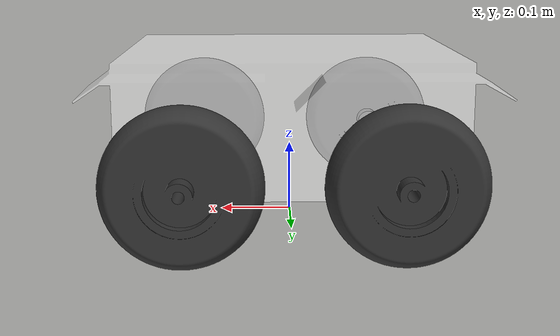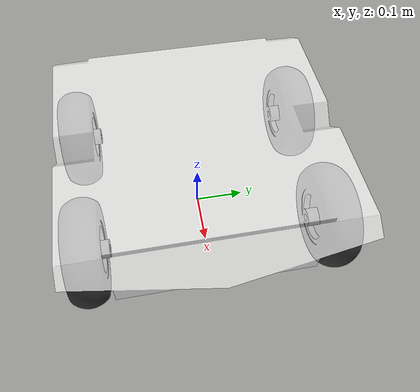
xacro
<?xml version="1.0"?>
<robot name="survo" xmlns:xacro="http://www.ros.org/wiki/xacro">
   <property name="M_PI" value="3.1415926535897931" />
  <property name="ground_clearance" value="0.0762" />

  <xacro:include filename="$(find survo_description)/urdf/materials.urdf.xacro" />

  <property name="chassis_length" value="0.4572" />
  <property name="chassis_width" value="0.381" />
  <property name="chassis_height" value="0.1778" />
  <property name="chassis_mass" value="6" />
  <property name="wheel_mass" value="1.5" />
  <property name="wheel_radius" value="0.2032" />
  <property name="wheel_width" value="0.0635" />

  <gazebo>
    <plugin name="grizzly_diff_controller"
            filename="libgrizzly_gazebo_plugins.so">
      <alwaysOn>true</alwaysOn>
      <updateRate>100.0</updateRate>
      <rearLeftJoint>rear_left_wheel_joint</rearLeftJoint>
      <rearRightJoint>rear_right_wheel_joint</rearRightJoint>
      <frontLeftJoint>front_left_wheel_joint</frontLeftJoint>
      <frontRightJoint>front_right_wheel_joint</frontRightJoint>
      <wheelSeparation>${0.1394*2}</wheelSeparation>
      <wheelDiameter>${0.2032*2.0}</wheelDiameter>
      <torque>100</torque>
    </plugin>
  </gazebo>

  <link name="base_link" />

  <link name="chassis_link">
    <inertial>
      <mass value="${chassis_mass}"/>
      <origin xyz="0 0 0"/>
      <inertia ixx="1.000000" ixy="0.000016" ixz="0.000000"
               iyy="-0.000016" iyz="0.000000" izz="0.000000" />
    </inertial>
    <visual>
      <origin xyz="0 0 ${ground_clearance}"
              rpy="${M_PI/2}  0  0" />
      <geometry>
        <mesh filename="package://survo_description/meshes/base_link.stl" scale="0.001 0.001 0.001"/>
      </geometry>
      <material name="White" />
    </visual>
    <collision>
      <origin xyz="0 0 ${ground_clearance}"
              rpy="${M_PI/2} 0 ${M_PI/2}" />
      <geometry>
         <box size="${chassis_width} ${chassis_height} ${chassis_length}" />
      </geometry>
    </collision>
  </link>
  <joint name="chassis_joint"
         type="fixed">
    <origin xyz="0 0 ${ground_clearance}"
            rpy="0 0 0"/>
    <parent link="base_link" />
    <child link="chassis_link" />
  </joint>

  <link name="imu_link" />
  <joint name="imu_joint" type="fixed">
    <origin xyz="0 ${chassis_length/2} 0"
             rpy="0 0 0" />
    <parent link="chassis_link" />
    <child link="imu_link" />
  </joint>

  <link name="front_left_wheel">
     <inertial>
        <mass value="${wheel_mass}" />
        <origin xyz="0 0 0" />
        <inertia ixx="1.000000" ixy="0.000000" ixz="-0.000001"
                       iyy="0.000000" iyz="0.347906" izz="0.000001" />
     </inertial>
     <visual>
       <origin xyz="0 0 0"
               rpy="0 0 0" />
       <geometry>
         <mesh filename="package://survo_description/meshes/wheel.stl" scale="0.001 0.001 0.001" />
       </geometry>
       <material name="DarkGrey" />
     </visual>
     <collision>
       <origin xyz="0 0 0"
               rpy="${M_PI/2} 0 0" />
       <geometry>
         <cylinder length="${wheel_width}"
                   radius="${wheel_radius}" />
       </geometry>
     </collision>
  </link>
   <gazebo reference="front_left_wheel">
     <mu1 value="1.0" />
     <mu2 value="1.0" />
     <kp value="10000000.0" />
     <kd value="1.0" />
     <fdir1 value="1 0 0" />
     <material>Gazebo/DarkGrey</material>
     <turnGravityOff>false</turnGravityOff>
     <selfCollide>true</selfCollide>
   </gazebo>
   <joint name="front_left_wheel_joint"
          type="continuous">
     <parent link="chassis_link" />
     <child link="front_left_wheel" />
     <origin xyz="0.1394 0.23495 0.0183"
             rpy="${M_PI/2} 0 0" />

     <axis xyz="0 0 1"
           rpy="0 0 0" />
     <limit effort="100"
            velocity="100" />
     <joint_properties damping="0.0"
                       friction="0.0" />
   </joint>

   <link name="front_right_wheel">
      <inertial>
         <mass value="${wheel_mass}" />
         <origin xyz="0 0 0" />
         <inertia ixx="1.000000" ixy="0.000000" ixz="-0.000001"
                        iyy="0.000000" iyz="0.347906" izz="0.000001" />
      </inertial>
      <visual>
        <origin xyz="0 0 0"
                rpy="0 0 0" />
        <geometry>
          <mesh filename="package://survo_description/meshes/wheel.stl" scale="0.001 0.001 0.001" />
        </geometry>
        <material name="DarkGrey" />
      </visual>
      <collision>
        <origin xyz="0 0 0"
                rpy="0 0 ${M_PI/2}" />
        <geometry>
          <cylinder length="${wheel_width}"
                    radius="${wheel_radius}" />
        </geometry>
      </collision>
    </link>
    <gazebo reference="front_right_wheel">
      <mu1 value="1.0" />
      <mu2 value="1.0" />
      <kp value="10000000.0" />
      <kd value="1.0" />
      <fdir1 value="1 0 0" />
      <material>Gazebo/DarkGrey</material>
      <turnGravityOff>false</turnGravityOff>
      <selfCollide>true</selfCollide>
    </gazebo>
    <joint name="front_right_wheel_joint"
           type="continuous">
      <parent link="chassis_link" />
      <child link="front_right_wheel" />
      <origin xyz="-0.1394 0.23495 0.0183"
              rpy="${M_PI/2} 0 0" />
      <axis xyz="0 0 1"
            rpy="0 0 0" />
      <limit effort="100"
             velocity="100" />
      <joint_properties damping="0.0"
                        friction="0.0" />
    </joint>

    <link name="rear_left_wheel">
       <inertial>
          <mass value="${wheel_mass}" />
          <origin xyz="0 0 0" />
          <inertia ixx="1.000000" ixy="0.000000" ixz="-0.000001"
                         iyy="0.000000" iyz="0.347906" izz="0.000001" />
       </inertial>
       <visual>
         <origin xyz="0 0 0"
                 rpy="0 0 0" />
         <geometry>
           <mesh filename="package://survo_description/meshes/wheel.stl" scale="0.001 0.001 0.001" />
         </geometry>
         <material name="DarkGrey" />
       </visual>
       <collision>
         <origin xyz="0 0 0"
                 rpy="${M_PI/2} 0 0" />
         <geometry>
           <cylinder length="${wheel_width}"
                     radius="${wheel_radius}" />
         </geometry>
       </collision>
     </link>
     <gazebo reference="rear_left_wheel">
       <mu1 value="1.0" />
       <mu2 value="1.0" />
       <kp value="10000000.0" />
       <kd value="1.0" />
       <fdir1 value="1 0 0" />
       <material>Gazebo/DarkGrey</material>
       <turnGravityOff>false</turnGravityOff>
       <selfCollide>true</selfCollide>
     </gazebo>
     <joint name="rear_left_wheel_joint"
            type="continuous">
       <parent link="chassis_link" />
       <child link="rear_left_wheel" />
       <origin xyz="0.1394 -0.23495 0.0183"
               rpy="${M_PI/2} 0 0" />
       <axis xyz="0 0 1"
             rpy="0 0 0" />
       <limit effort="100"
              velocity="100" />
       <joint_properties damping="0.0"
                         friction="0.0" />
     </joint>

     <link name="rear_right_wheel">
        <inertial>
           <mass value="${wheel_mass}" />
           <origin xyz="0 0 0" />
           <inertia ixx="1.000000" ixy="0.000000" ixz="-0.000001"
                          iyy="0.000000" iyz="0.347906" izz="0.000001" />
        </inertial>
        <visual>
          <origin xyz="0 0 0"
                  rpy="0 0 0" />
          <geometry>
            <mesh filename="package://survo_description/meshes/wheel.stl" scale="0.001 0.001 0.001" />
          </geometry>
          <material name="DarkGrey" />
        </visual>
        <collision>
          <origin xyz="0 0 0"
                  rpy="0 0 ${M_PI/2}" />
          <geometry>
            <cylinder length="${wheel_width}"
                      radius="${wheel_radius}" />
          </geometry>
        </collision>
      </link>
      <gazebo reference="rear_right_wheel">
        <mu1 value="1.0" />
        <mu2 value="1.0" />
        <kp value="10000000.0" />
        <kd value="1.0" />
        <fdir1 value="1 0 0" />
        <material>Gazebo/DarkGrey</material>
        <turnGravityOff>false</turnGravityOff>
        <selfCollide>true</selfCollide>
      </gazebo>
      <joint name="rear_right_wheel_joint"
             type="continuous">
        <parent link="chassis_link" />
        <child link="rear_right_wheel" />
        <origin xyz="-0.1394 -0.23495 0.0183"
                rpy="${M_PI/2} 0 0" />
        <axis xyz="0 0 1"
              rpy="0 0 0" />
        <limit effort="100"
               velocity="100" />
        <joint_properties damping="0.0"
                          friction="0.0" />
      </joint>
</robot>

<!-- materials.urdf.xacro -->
<robot>
  <material name="Black">
    <color rgba="0.0 0.0 0.0 0.5" />
  </material>
  <material name="Blue">
    <color rgba="0.0 0.0 0.8 1.0" />
  </material>
  <material name="Green">
    <color rgba="0.0 0.8 0.0 1.0" />
  </material>
  <material name="Grey">
    <color rgba="0.3 0.3 0.3 1.0" />
  </material>
  <material name="DarkGrey">
    <color rgba="0.2 0.2 0.2 1.0" />
  </material>
  <material name="Red">
    <color rgba="0.8 0.0 0.0 1.0" />
  </material>
  <material name="White">
    <color rgba="1.0 1.0 1.0 0.7" />
  </material>
  <material name="Yellow">
    <color rgba="0.8 0.8 0.0 0.5" />
  </material>
</robot>
